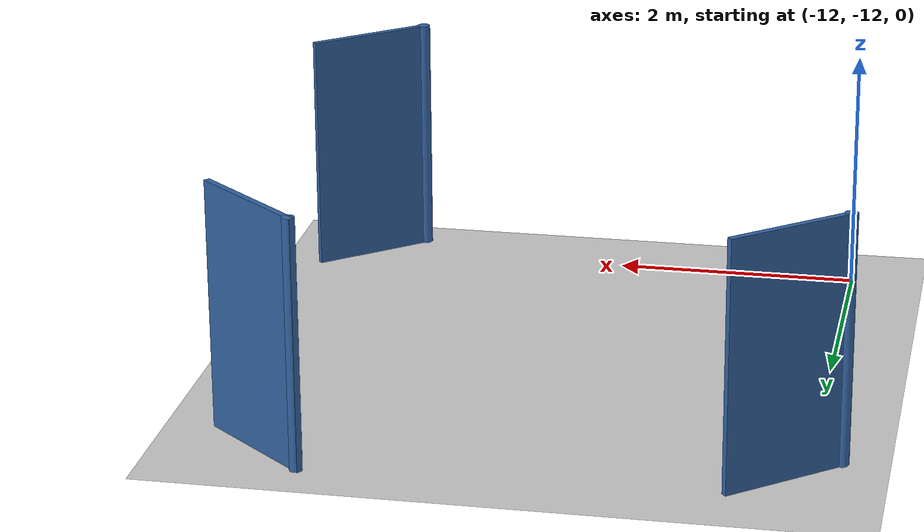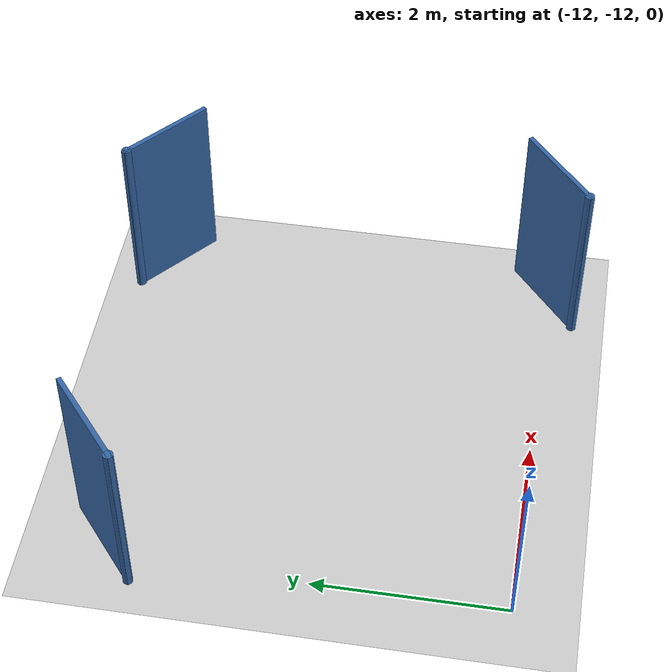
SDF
<sdf version="1.6">
 <world name="default">
  <model name="ground_plane">
   <static>1</static>
   <link name="link">
    <collision name="collision">
     <geometry><plane><normal>0 0 1</normal><size>100 100</size></plane></geometry>
     <surface><friction><ode><mu>100</mu><mu2>50</mu2></ode></friction></surface>
    </collision>
    <visual name="visual">
     <cast_shadows>0</cast_shadows>
     <geometry><plane><normal>0 0 1</normal><size>100 100</size></plane></geometry>
     <material>
      <script><uri>file://media/materials/scripts/gazebo.material</uri><name>Gazebo/Grey</name></script>
     </material>
    </visual>
   </link>
  </model>
  <model name="hinge_door_0">
   <link name="link_0">
    <inertial>
     <mass>0.11</mass>
     <inertia>
      <ixx>0.0366896</ixx>
      <ixy>0</ixy>
      <ixz>0</ixz>
      <iyy>0.0477583</iyy>
      <iyz>0</iyz>
      <izz>0.0111146</izz>
     </inertia>
    </inertial>
    <pose>0.25 0 1 0 -0 0</pose>
    <visual name="visual">
     <geometry><box><size>1.1 0.05 2</size></box></geometry>
     <material>
      <lighting>1</lighting>
      <script><uri>file://media/materials/scripts/gazebo.material</uri><name>Gazebo/Grey</name></script>
      <shader type="pixel"><normal_map>__default__</normal_map></shader>
      <ambient>0.204 0.396 0.643 1</ambient>
      <diffuse>0.7 0.7 0.7 1</diffuse>
      <specular>0.01 0.01 0.01 1</specular>
      <emissive>0 0 0 1</emissive>
     </material>
    </visual>
    <collision name="collision">
     <geometry><box><size>1.1 0.05 2</size></box></geometry>
     <surface>
      <friction>
       <ode><mu>1</mu><mu2>1</mu2><fdir1>0 0 0</fdir1><slip1>0</slip1><slip2>0</slip2></ode>
       <torsional>
        <coefficient>1</coefficient>
        <patch_radius>0</patch_radius>
        <surface_radius>0</surface_radius>
        <use_patch_radius>1</use_patch_radius>
        <ode><slip>0</slip></ode>
       </torsional>
      </friction>
      <bounce><restitution_coefficient>0</restitution_coefficient><threshold>1e+06</threshold></bounce>
      <contact>
       <collide_without_contact>0</collide_without_contact>
       <collide_without_contact_bitmask>1</collide_without_contact_bitmask>
       <collide_bitmask>1</collide_bitmask>
       <ode>
        <soft_cfm>0</soft_cfm>
        <soft_erp>0.2</soft_erp>
        <kp>1e+13</kp>
        <kd>1</kd>
        <max_vel>0.01</max_vel>
        <min_depth>0</min_depth>
       </ode>
       <bullet>
        <split_impulse>1</split_impulse>
        <split_impulse_penetration_threshold>-0.01</split_impulse_penetration_threshold>
        <soft_cfm>0</soft_cfm>
        <soft_erp>0.2</soft_erp>
        <kp>1e+13</kp>
        <kd>1</kd>
       </bullet>
      </contact>
     </surface>
    </collision>
   </link>
   <link name="link_1">
    <inertial>
     <mass>10.9956</mass>
     <inertia>
      <ixx>3.67206</ixx>
      <ixy>0</ixy>
      <ixz>0</ixz>
      <iyy>3.67206</iyy>
      <iyz>0</iyz>
      <izz>0.0137445</izz>
     </inertia>
    </inertial>
    <pose>-0.25 0 1 0 -0 0</pose>
    <visual name="visual">
     <geometry><cylinder><radius>0.05</radius><length>2</length></cylinder></geometry>
     <material>
      <lighting>1</lighting>
      <script><uri>file://media/materials/scripts/gazebo.material</uri><name>Gazebo/Grey</name></script>
      <shader type="pixel"><normal_map>__default__</normal_map></shader>
      <ambient>0.204 0.396 0.643 1</ambient>
      <diffuse>0.7 0.7 0.7 1</diffuse>
      <specular>0.01 0.01 0.01 1</specular>
      <emissive>0 0 0 1</emissive>
     </material>
    </visual>
    <collision name="collision">
     <geometry><cylinder><radius>0.05</radius><length>2</length></cylinder></geometry>
     <surface>
      <friction>
       <ode><mu>1</mu><mu2>1</mu2><fdir1>0 0 0</fdir1><slip1>0</slip1><slip2>0</slip2></ode>
       <torsional>
        <coefficient>1</coefficient>
        <patch_radius>0</patch_radius>
        <surface_radius>0</surface_radius>
        <use_patch_radius>1</use_patch_radius>
        <ode><slip>0</slip></ode>
       </torsional>
      </friction>
      <bounce><restitution_coefficient>0</restitution_coefficient><threshold>1e+06</threshold></bounce>
      <contact>
       <collide_without_contact>0</collide_without_contact>
       <collide_without_contact_bitmask>1</collide_without_contact_bitmask>
       <collide_bitmask>1</collide_bitmask>
       <ode>
        <soft_cfm>0</soft_cfm>
        <soft_erp>0.2</soft_erp>
        <kp>1e+13</kp>
        <kd>1</kd>
        <max_vel>0.01</max_vel>
        <min_depth>0</min_depth>
       </ode>
       <bullet>
        <split_impulse>1</split_impulse>
        <split_impulse_penetration_threshold>-0.01</split_impulse_penetration_threshold>
        <soft_cfm>0</soft_cfm>
        <soft_erp>0.2</soft_erp>
        <kp>1e+13</kp>
        <kd>1</kd>
       </bullet>
      </contact>
     </surface>
    </collision>
   </link>
   <joint name="hinge" type="revolute">
    <parent>link_1</parent>
    <child>link_0</child>
    <pose>-0.5 0 0 0 -0 0</pose>
    <axis>
     <xyz>0 0 1</xyz>
     <use_parent_model_frame>0</use_parent_model_frame>
     <limit>
      <lower>-1.79769e+308</lower>
      <upper>1.79769e+308</upper>
      <effort>-1</effort>
      <velocity>-1</velocity>
     </limit>
     <dynamics>
      <spring_reference>0</spring_reference>
      <spring_stiffness>0</spring_stiffness>
      <damping>0</damping>
      <friction>0</friction>
     </dynamics>
    </axis>
    <physics>
     <ode><limit><cfm>0</cfm><erp>0.2</erp></limit><suspension><cfm>0</cfm><erp>0.2</erp></suspension></ode>
    </physics>
   </joint>
   <joint name="floor_link" type="fixed">
    <child>link_1</child>
    <parent>world</parent>
    <axis>
     <xyz>0 0 1</xyz>
     <dynamics><spring_reference>0</spring_reference><spring_stiffness>0</spring_stiffness></dynamics>
     <use_parent_model_frame>0</use_parent_model_frame>
     <limit><lower>-1e+16</lower><upper>1e+16</upper></limit>
    </axis>
   </joint>
   <pose>-8.0731 -7.59703 0 0 -0 -0.7</pose>
  </model>
  <model name="hinge_door_1">
   <link name="link_0">
    <inertial>
     <mass>0.11</mass>
     <inertia>
      <ixx>0.0366896</ixx>
      <ixy>0</ixy>
      <ixz>0</ixz>
      <iyy>0.0477583</iyy>
      <iyz>0</iyz>
      <izz>0.0111146</izz>
     </inertia>
    </inertial>
    <pose>0.25 0 1 0 -0 0</pose>
    <visual name="visual">
     <geometry><box><size>1.1 0.05 2</size></box></geometry>
     <material>
      <lighting>1</lighting>
      <script><uri>file://media/materials/scripts/gazebo.material</uri><name>Gazebo/Grey</name></script>
      <shader type="pixel"><normal_map>__default__</normal_map></shader>
      <ambient>0.204 0.396 0.643 1</ambient>
      <diffuse>0.7 0.7 0.7 1</diffuse>
      <specular>0.01 0.01 0.01 1</specular>
      <emissive>0 0 0 1</emissive>
     </material>
    </visual>
    <collision name="collision">
     <geometry><box><size>1.1 0.05 2</size></box></geometry>
     <surface>
      <friction>
       <ode><mu>1</mu><mu2>1</mu2><fdir1>0 0 0</fdir1><slip1>0</slip1><slip2>0</slip2></ode>
       <torsional>
        <coefficient>1</coefficient>
        <patch_radius>0</patch_radius>
        <surface_radius>0</surface_radius>
        <use_patch_radius>1</use_patch_radius>
        <ode><slip>0</slip></ode>
       </torsional>
      </friction>
      <bounce><restitution_coefficient>0</restitution_coefficient><threshold>1e+06</threshold></bounce>
      <contact>
       <collide_without_contact>0</collide_without_contact>
       <collide_without_contact_bitmask>1</collide_without_contact_bitmask>
       <collide_bitmask>1</collide_bitmask>
       <ode>
        <soft_cfm>0</soft_cfm>
        <soft_erp>0.2</soft_erp>
        <kp>1e+13</kp>
        <kd>1</kd>
        <max_vel>0.01</max_vel>
        <min_depth>0</min_depth>
       </ode>
       <bullet>
        <split_impulse>1</split_impulse>
        <split_impulse_penetration_threshold>-0.01</split_impulse_penetration_threshold>
        <soft_cfm>0</soft_cfm>
        <soft_erp>0.2</soft_erp>
        <kp>1e+13</kp>
        <kd>1</kd>
       </bullet>
      </contact>
     </surface>
    </collision>
   </link>
   <link name="link_1">
    <inertial>
     <mass>10.9956</mass>
     <inertia>
      <ixx>3.67206</ixx>
      <ixy>0</ixy>
      <ixz>0</ixz>
      <iyy>3.67206</iyy>
      <iyz>0</iyz>
      <izz>0.0137445</izz>
     </inertia>
    </inertial>
    <pose>-0.25 0 1 0 -0 0</pose>
    <visual name="visual">
     <geometry><cylinder><radius>0.05</radius><length>2</length></cylinder></geometry>
     <material>
      <lighting>1</lighting>
      <script><uri>file://media/materials/scripts/gazebo.material</uri><name>Gazebo/Grey</name></script>
      <shader type="pixel"><normal_map>__default__</normal_map></shader>
      <ambient>0.204 0.396 0.643 1</ambient>
      <diffuse>0.7 0.7 0.7 1</diffuse>
      <specular>0.01 0.01 0.01 1</specular>
      <emissive>0 0 0 1</emissive>
     </material>
    </visual>
    <collision name="collision">
     <geometry><cylinder><radius>0.05</radius><length>2</length></cylinder></geometry>
     <surface>
      <friction>
       <ode><mu>1</mu><mu2>1</mu2><fdir1>0 0 0</fdir1><slip1>0</slip1><slip2>0</slip2></ode>
       <torsional>
        <coefficient>1</coefficient>
        <patch_radius>0</patch_radius>
        <surface_radius>0</surface_radius>
        <use_patch_radius>1</use_patch_radius>
        <ode><slip>0</slip></ode>
       </torsional>
      </friction>
      <bounce><restitution_coefficient>0</restitution_coefficient><threshold>1e+06</threshold></bounce>
      <contact>
       <collide_without_contact>0</collide_without_contact>
       <collide_without_contact_bitmask>1</collide_without_contact_bitmask>
       <collide_bitmask>1</collide_bitmask>
       <ode>
        <soft_cfm>0</soft_cfm>
        <soft_erp>0.2</soft_erp>
        <kp>1e+13</kp>
        <kd>1</kd>
        <max_vel>0.01</max_vel>
        <min_depth>0</min_depth>
       </ode>
       <bullet>
        <split_impulse>1</split_impulse>
        <split_impulse_penetration_threshold>-0.01</split_impulse_penetration_threshold>
        <soft_cfm>0</soft_cfm>
        <soft_erp>0.2</soft_erp>
        <kp>1e+13</kp>
        <kd>1</kd>
       </bullet>
      </contact>
     </surface>
    </collision>
   </link>
   <joint name="hinge" type="revolute">
    <parent>link_1</parent>
    <child>link_0</child>
    <pose>-0.5 0 0 0 -0 0</pose>
    <axis>
     <xyz>0 0 1</xyz>
     <use_parent_model_frame>0</use_parent_model_frame>
     <limit>
      <lower>-1.79769e+308</lower>
      <upper>1.79769e+308</upper>
      <effort>-1</effort>
      <velocity>-1</velocity>
     </limit>
     <dynamics>
      <spring_reference>0</spring_reference>
      <spring_stiffness>0</spring_stiffness>
      <damping>0</damping>
      <friction>0</friction>
     </dynamics>
    </axis>
    <physics>
     <ode><limit><cfm>0</cfm><erp>0.2</erp></limit><suspension><cfm>0</cfm><erp>0.2</erp></suspension></ode>
    </physics>
   </joint>
   <joint name="floor_link" type="fixed">
    <child>link_1</child>
    <parent>world</parent>
    <axis>
     <xyz>0 0 1</xyz>
     <dynamics><spring_reference>0</spring_reference><spring_stiffness>0</spring_stiffness></dynamics>
     <use_parent_model_frame>0</use_parent_model_frame>
     <limit><lower>-1e+16</lower><upper>1e+16</upper></limit>
    </axis>
   </joint>
   <pose>-12.051 -8.08532 0 0 -0 0.7</pose>
  </model>
  <model name="hinge_door_2">
   <link name="link_0">
    <inertial>
     <mass>0.11</mass>
     <inertia>
      <ixx>0.0366896</ixx>
      <ixy>0</ixy>
      <ixz>0</ixz>
      <iyy>0.0477583</iyy>
      <iyz>0</iyz>
      <izz>0.0111146</izz>
     </inertia>
    </inertial>
    <pose>0.25 0 1 0 -0 0</pose>
    <visual name="visual">
     <geometry><box><size>1.1 0.05 2</size></box></geometry>
     <material>
      <lighting>1</lighting>
      <script><uri>file://media/materials/scripts/gazebo.material</uri><name>Gazebo/Grey</name></script>
      <shader type="pixel"><normal_map>__default__</normal_map></shader>
      <ambient>0.204 0.396 0.643 1</ambient>
      <diffuse>0.7 0.7 0.7 1</diffuse>
      <specular>0.01 0.01 0.01 1</specular>
      <emissive>0 0 0 1</emissive>
     </material>
    </visual>
    <collision name="collision">
     <geometry><box><size>1.1 0.05 2</size></box></geometry>
     <surface>
      <friction>
       <ode><mu>1</mu><mu2>1</mu2><fdir1>0 0 0</fdir1><slip1>0</slip1><slip2>0</slip2></ode>
       <torsional>
        <coefficient>1</coefficient>
        <patch_radius>0</patch_radius>
        <surface_radius>0</surface_radius>
        <use_patch_radius>1</use_patch_radius>
        <ode><slip>0</slip></ode>
       </torsional>
      </friction>
      <bounce><restitution_coefficient>0</restitution_coefficient><threshold>1e+06</threshold></bounce>
      <contact>
       <collide_without_contact>0</collide_without_contact>
       <collide_without_contact_bitmask>1</collide_without_contact_bitmask>
       <collide_bitmask>1</collide_bitmask>
       <ode>
        <soft_cfm>0</soft_cfm>
        <soft_erp>0.2</soft_erp>
        <kp>1e+13</kp>
        <kd>1</kd>
        <max_vel>0.01</max_vel>
        <min_depth>0</min_depth>
       </ode>
       <bullet>
        <split_impulse>1</split_impulse>
        <split_impulse_penetration_threshold>-0.01</split_impulse_penetration_threshold>
        <soft_cfm>0</soft_cfm>
        <soft_erp>0.2</soft_erp>
        <kp>1e+13</kp>
        <kd>1</kd>
       </bullet>
      </contact>
     </surface>
    </collision>
   </link>
   <link name="link_1">
    <inertial>
     <mass>10.9956</mass>
     <inertia>
      <ixx>3.67206</ixx>
      <ixy>0</ixy>
      <ixz>0</ixz>
      <iyy>3.67206</iyy>
      <iyz>0</iyz>
      <izz>0.0137445</izz>
     </inertia>
    </inertial>
    <pose>-0.25 0 1 0 -0 0</pose>
    <visual name="visual">
     <geometry><cylinder><radius>0.05</radius><length>2</length></cylinder></geometry>
     <material>
      <lighting>1</lighting>
      <script><uri>file://media/materials/scripts/gazebo.material</uri><name>Gazebo/Grey</name></script>
      <shader type="pixel"><normal_map>__default__</normal_map></shader>
      <ambient>0.204 0.396 0.643 1</ambient>
      <diffuse>0.7 0.7 0.7 1</diffuse>
      <specular>0.01 0.01 0.01 1</specular>
      <emissive>0 0 0 1</emissive>
     </material>
    </visual>
    <collision name="collision">
     <geometry><cylinder><radius>0.05</radius><length>2</length></cylinder></geometry>
     <surface>
      <friction>
       <ode><mu>1</mu><mu2>1</mu2><fdir1>0 0 0</fdir1><slip1>0</slip1><slip2>0</slip2></ode>
       <torsional>
        <coefficient>1</coefficient>
        <patch_radius>0</patch_radius>
        <surface_radius>0</surface_radius>
        <use_patch_radius>1</use_patch_radius>
        <ode><slip>0</slip></ode>
       </torsional>
      </friction>
      <bounce><restitution_coefficient>0</restitution_coefficient><threshold>1e+06</threshold></bounce>
      <contact>
       <collide_without_contact>0</collide_without_contact>
       <collide_without_contact_bitmask>1</collide_without_contact_bitmask>
       <collide_bitmask>1</collide_bitmask>
       <ode>
        <soft_cfm>0</soft_cfm>
        <soft_erp>0.2</soft_erp>
        <kp>1e+13</kp>
        <kd>1</kd>
        <max_vel>0.01</max_vel>
        <min_depth>0</min_depth>
       </ode>
       <bullet>
        <split_impulse>1</split_impulse>
        <split_impulse_penetration_threshold>-0.01</split_impulse_penetration_threshold>
        <soft_cfm>0</soft_cfm>
        <soft_erp>0.2</soft_erp>
        <kp>1e+13</kp>
        <kd>1</kd>
       </bullet>
      </contact>
     </surface>
    </collision>
   </link>
   <joint name="hinge" type="revolute">
    <parent>link_1</parent>
    <child>link_0</child>
    <pose>-0.5 0 0 0 -0 0</pose>
    <axis>
     <xyz>0 0 1</xyz>
     <use_parent_model_frame>0</use_parent_model_frame>
     <limit>
      <lower>-1.79769e+308</lower>
      <upper>1.79769e+308</upper>
      <effort>-1</effort>
      <velocity>-1</velocity>
     </limit>
     <dynamics>
      <spring_reference>0</spring_reference>
      <spring_stiffness>0</spring_stiffness>
      <damping>0</damping>
      <friction>0</friction>
     </dynamics>
    </axis>
    <physics>
     <ode><limit><cfm>0</cfm><erp>0.2</erp></limit><suspension><cfm>0</cfm><erp>0.2</erp></suspension></ode>
    </physics>
   </joint>
   <joint name="floor_link" type="fixed">
    <child>link_1</child>
    <parent>world</parent>
    <axis>
     <xyz>0 0 1</xyz>
     <dynamics><spring_reference>0</spring_reference><spring_stiffness>0</spring_stiffness></dynamics>
     <use_parent_model_frame>0</use_parent_model_frame>
     <limit><lower>-1e+16</lower><upper>1e+16</upper></limit>
    </axis>
   </joint>
   <pose>-8.00153 -12.1337 0 0 -0 0.7</pose>
  </model>
 </world>
</sdf>
